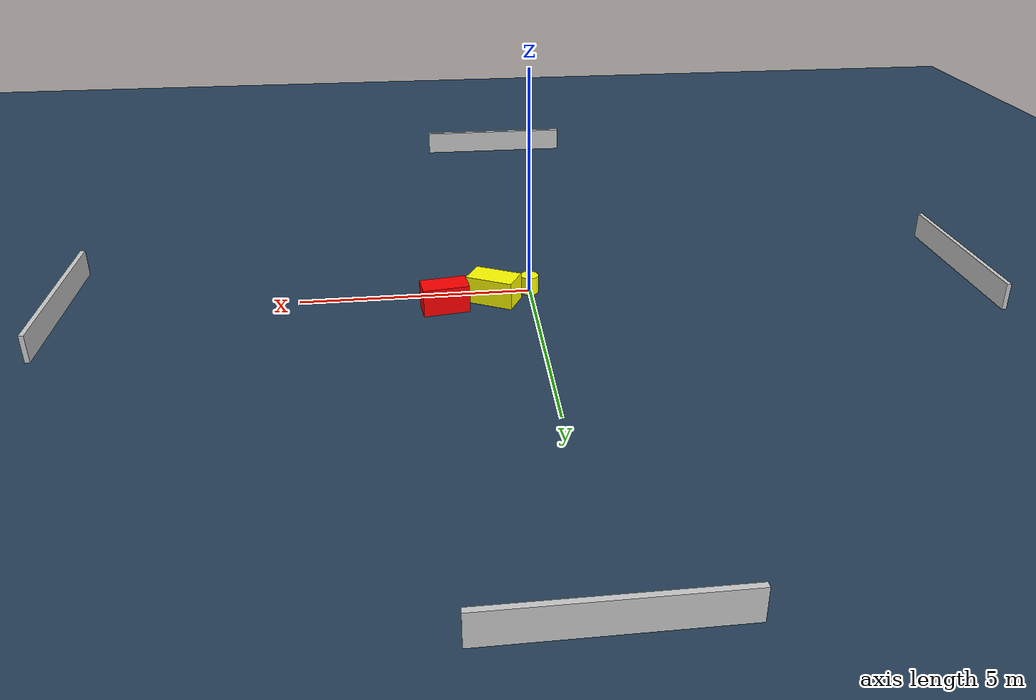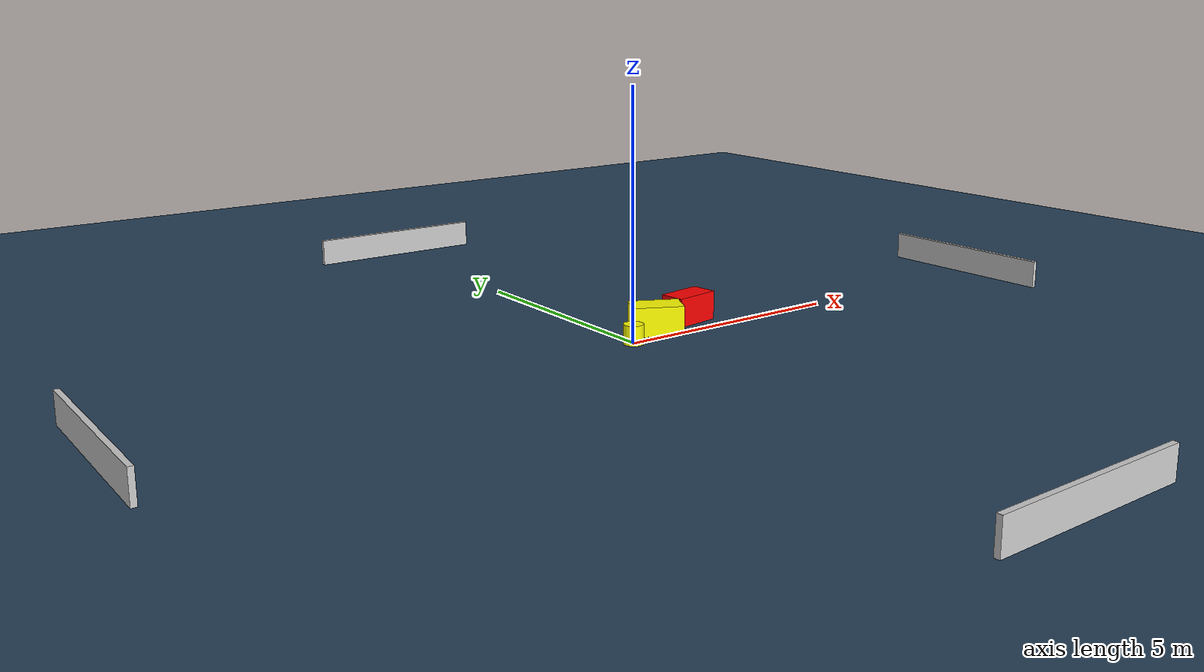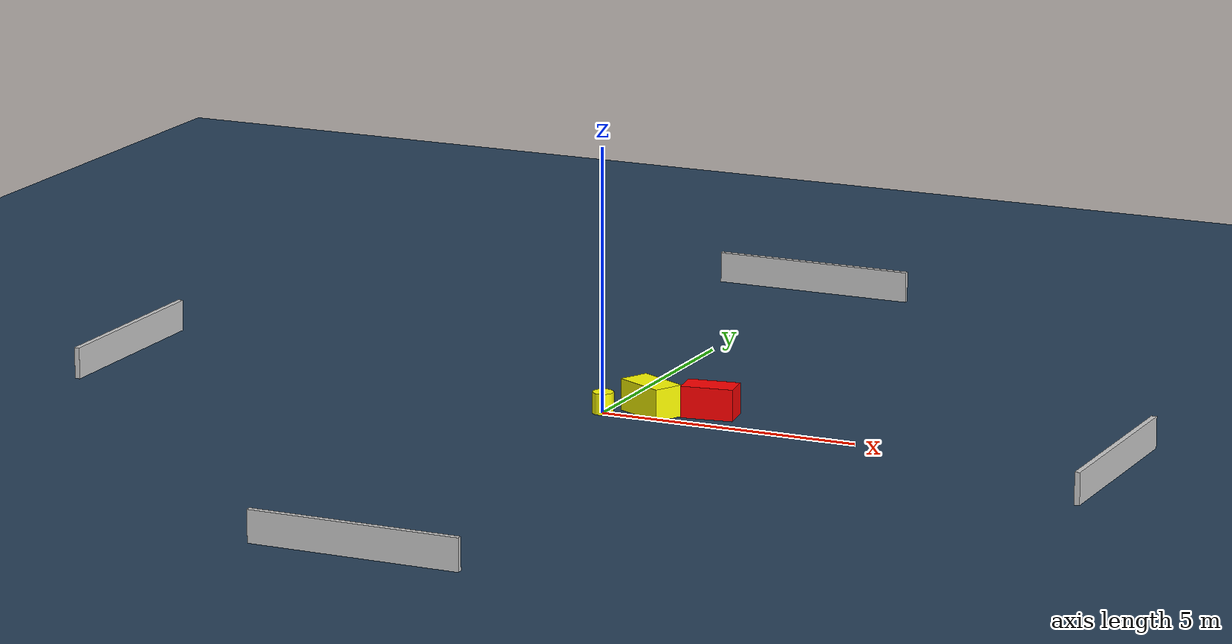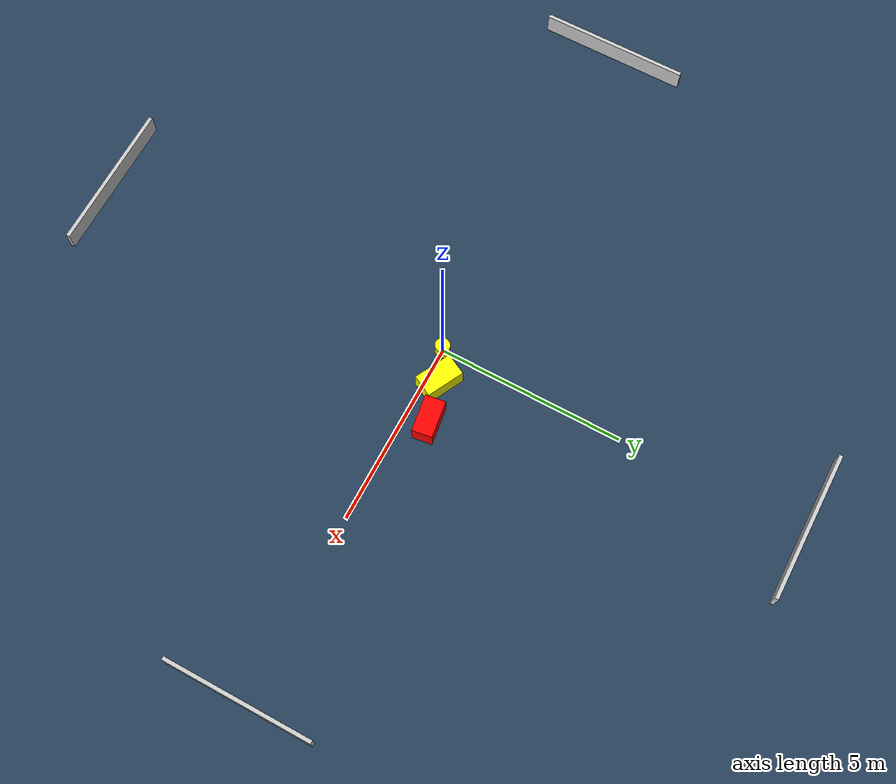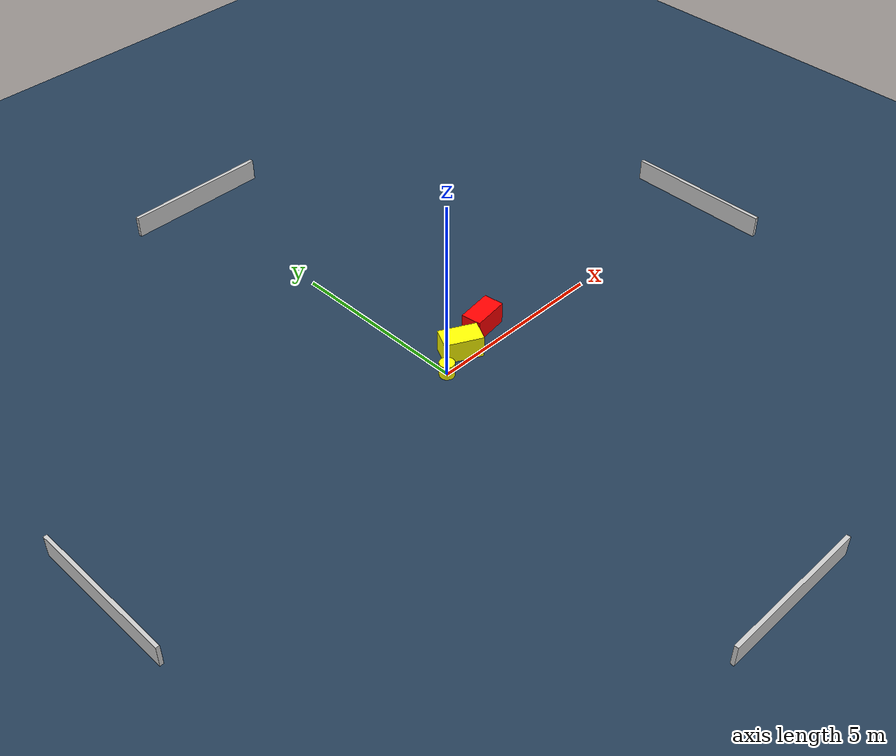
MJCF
<?xml version="1.0" ?>
<mujoco model="generated_environment">
  <option timestep="0.01" integrator="RK4" cone="elliptic"/>
  <default>
    <geom density="1"/>
  </default>
  <asset>
    <texture builtin="gradient" height="3072" name="skybox" rgb1="0.3 0.5 0.7" rgb2="0 0 0" type="skybox" width="512"/>
    <texture builtin="checker" height="300" name="groundplane" rgb1="0.2 0.3 0.4" rgb2="0.1 0.2 0.3" type="2d" width="300"/>
    <material name="groundplane" reflectance="0.2" texrepeat="5 5" texture="groundplane"/>
  </asset>
  <worldbody>
    <light dir="0 0 -1" directional="true" pos="0 0 1.5"/>
    <geom condim="3" friction="0.5 0.005 0.001" material="groundplane" name="floor" pos="0 0 0" size="0 0 0.05" type="plane"/>
    <body name="walls">
      <geom name="wall_1" condim="4" pos="-10.0 0.0 0.3" rgba="0.800000011920929 0.800000011920929 0.800000011920929 1.0" size="0.05 2.0 0.3" type="box"/>
      <geom name="wall_2" condim="4" pos="10.0 0.0 0.3" rgba="0.800000011920929 0.800000011920929 0.800000011920929 1.0" size="0.05 2.0 0.3" type="box"/>
      <geom name="wall_3" condim="4" pos="0.0 -10.0 0.3" rgba="0.800000011920929 0.800000011920929 0.800000011920929 1.0" size="2.0 0.05 0.3" type="box"/>
      <geom name="wall_4" condim="4" pos="0.0 10.0 0.3" rgba="0.800000011920929 0.800000011920929 0.800000011920929 1.0" size="2.0 0.05 0.3" type="box"/>
    </body>
    <body name="robot">
      <joint name="joint_x" type="slide" pos="0 0 0" axis="1 0 0"/>
      <joint name="joint_y" type="slide" pos="0 0 0" axis="0 1 0"/>
      <geom name="robot" type="cylinder" pos="0.0 0.0 0.2" size="0.2 0.2 0.0" mass="5.0" friction="1.0 0.005 0.0001" condim="4" rgba="1.0 1.0 0.0 1.0"/>
    </body>
    <body name="obstacle_1_movable">
      <geom name="obstacle_1_movable" condim="4" pos="0.8150523409803984 0.3371061639763178 0.3" euler="0 0 242.93011300938056" friction="0.0 0.005 0.001" rgba="1.0 1.0 0.0 1.0" size="0.2978361961709474 0.5200361404696552 0.3" type="box" mass="0.1"/>
      <joint type="free"/>
    </body>
    <body name="obstacle_2_static">
      <geom name="obstacle_2_static" condim="4" pos="1.8869260752212231 0.6219052720060014 0.3" euler="0 0 277.9457890468396" friction="0.0 0.005 0.001" rgba="1.0 0.0 0.0 1.0" size="0.27057685713164303 0.49401891670736553 0.3" type="box"/>
    </body>
  </worldbody>
  <actuator>
    <motor name="actuator_x" joint="joint_x" gear="1" ctrlrange="-1 1"/>
    <motor name="actuator_y" joint="joint_y" gear="1" ctrlrange="-1 1"/>
  </actuator>
</mujoco>
